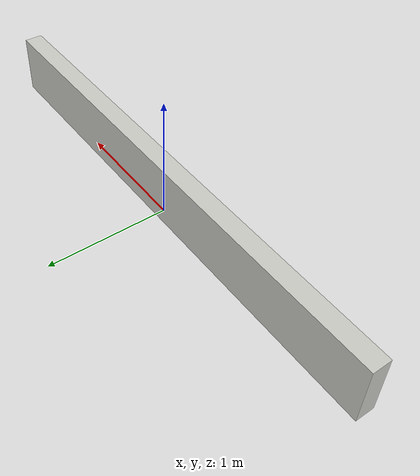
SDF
<?xml version='1.0'?>
<sdf version='1.6'>
  <model name='4m_low_wall'>
    <link name='Wall_0'>
      <collision name='Wall_0_Collision'>
        <geometry>
          <box>
            <size>4.15 0.15 0.5</size>
          </box>
        </geometry>
        <pose frame=''>0 0 0.25 0 -0 0</pose>
      </collision>
      <visual name='Wall_0_Visual'>
        <pose frame=''>0 0 0.25 0 -0 0</pose>
        <geometry>
          <box>
            <size>4.15 0.15 0.5</size>
          </box>
        </geometry>
        <material>
          <script>
            <uri>file://media/materials/scripts/gazebo.material</uri>
            <name>Gazebo/CeilingTiled</name>
          </script>
          <ambient>1 1 1 1</ambient>
        </material>
        <meta>
          <layer>0</layer>
        </meta>
      </visual>
      <pose frame=''>0 0 0 0 -0 0</pose>
    </link>
    <static>1</static>
  </model>
</sdf>
